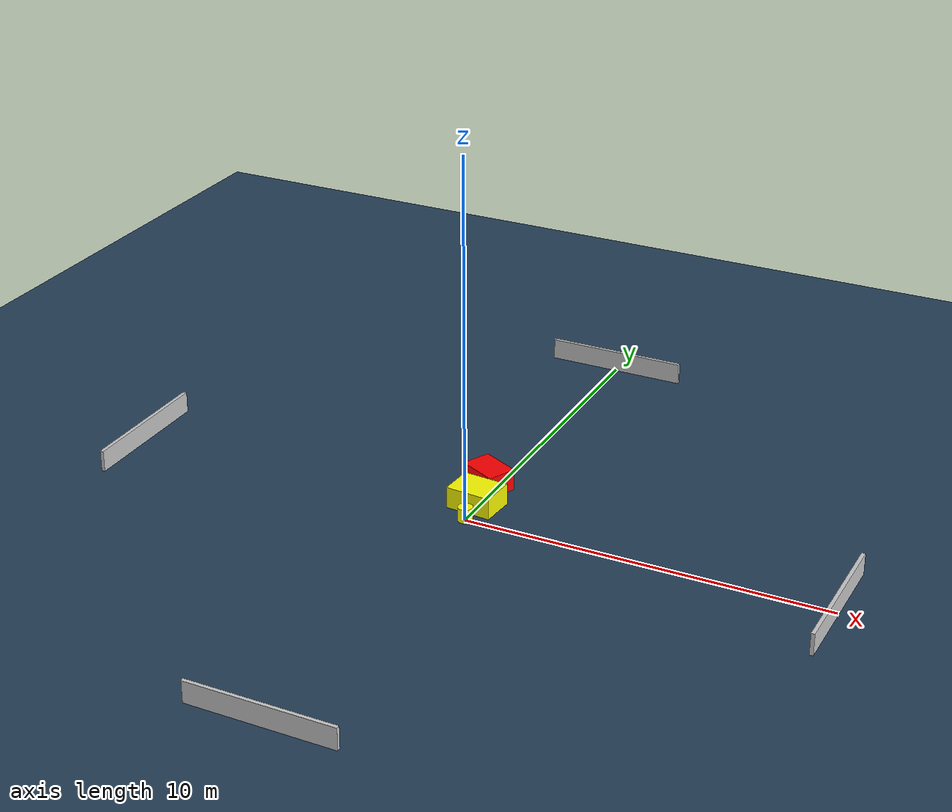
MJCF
<?xml version="1.0" ?>
<mujoco model="generated_environment">
  <option timestep="0.01" integrator="RK4" cone="elliptic"/>
  <default>
    <geom density="1"/>
  </default>
  <asset>
    <texture builtin="gradient" height="3072" name="skybox" rgb1="0.3 0.5 0.7" rgb2="0 0 0" type="skybox" width="512"/>
    <texture builtin="checker" height="300" name="groundplane" rgb1="0.2 0.3 0.4" rgb2="0.1 0.2 0.3" type="2d" width="300"/>
    <material name="groundplane" reflectance="0.2" texrepeat="5 5" texture="groundplane"/>
  </asset>
  <worldbody>
    <light dir="0 0 -1" directional="true" pos="0 0 1.5"/>
    <geom condim="3" friction="0.5 0.005 0.001" material="groundplane" name="floor" pos="0 0 0" size="0 0 0.05" type="plane"/>
    <body name="walls">
      <geom name="wall_1" condim="4" pos="-10.0 0.0 0.3" rgba="0.800000011920929 0.800000011920929 0.800000011920929 1.0" size="0.05 2.0 0.3" type="box"/>
      <geom name="wall_2" condim="4" pos="10.0 0.0 0.3" rgba="0.800000011920929 0.800000011920929 0.800000011920929 1.0" size="0.05 2.0 0.3" type="box"/>
      <geom name="wall_3" condim="4" pos="0.0 -10.0 0.3" rgba="0.800000011920929 0.800000011920929 0.800000011920929 1.0" size="2.0 0.05 0.3" type="box"/>
      <geom name="wall_4" condim="4" pos="0.0 10.0 0.3" rgba="0.800000011920929 0.800000011920929 0.800000011920929 1.0" size="2.0 0.05 0.3" type="box"/>
    </body>
    <body name="robot">
      <joint name="joint_x" type="slide" pos="0 0 0" axis="1 0 0"/>
      <joint name="joint_y" type="slide" pos="0 0 0" axis="0 1 0"/>
      <geom name="robot" type="cylinder" pos="0.0 0.0 0.2" size="0.2 0.2 0.0" mass="5.0" friction="1.0 0.005 0.0001" condim="4" rgba="1.0 1.0 0.0 1.0"/>
    </body>
    <body name="obstacle_1_movable">
      <geom name="obstacle_1_movable" condim="4" pos="-0.06379172746940194 0.8062196850694644 0.3" euler="0 0 175.53421479356845" friction="0.0 0.005 0.001" rgba="1.0 1.0 0.0 1.0" size="0.6371022996785773 0.4786168011899903 0.3" type="box" mass="0.1"/>
      <joint type="free"/>
    </body>
    <body name="obstacle_2_static">
      <geom name="obstacle_2_static" condim="4" pos="-0.2566527338968198 1.909918528669369 0.3" euler="0 0 333.89930384670583" friction="0.0 0.005 0.001" rgba="1.0 0.0 0.0 1.0" size="0.5692665827852288 0.4095428109344959 0.3" type="box"/>
    </body>
  </worldbody>
  <actuator>
    <motor name="actuator_x" joint="joint_x" gear="1" ctrlrange="-1 1"/>
    <motor name="actuator_y" joint="joint_y" gear="1" ctrlrange="-1 1"/>
  </actuator>
</mujoco>
